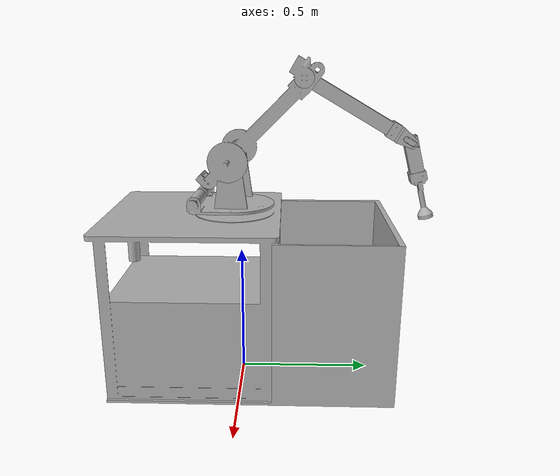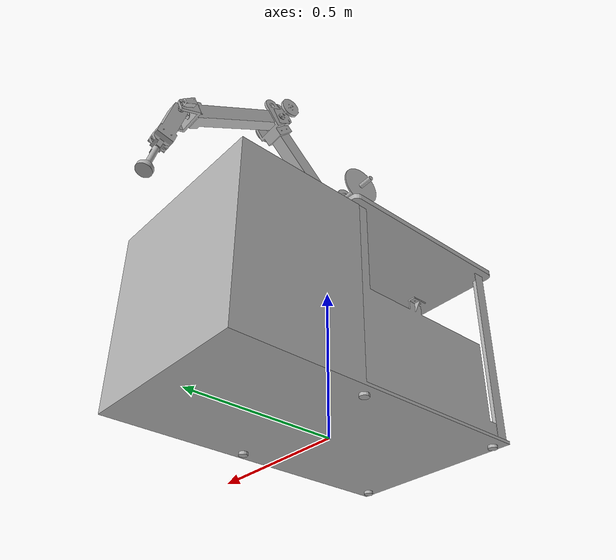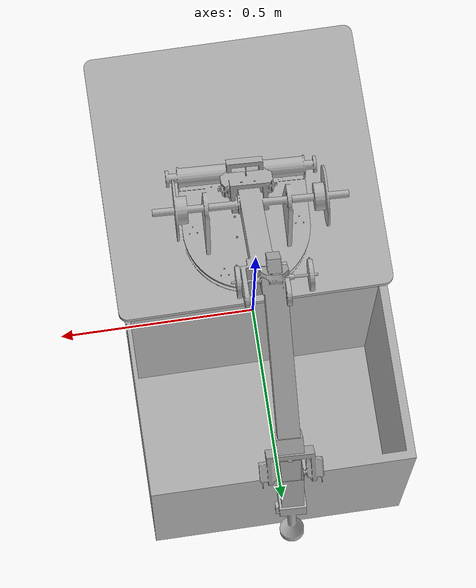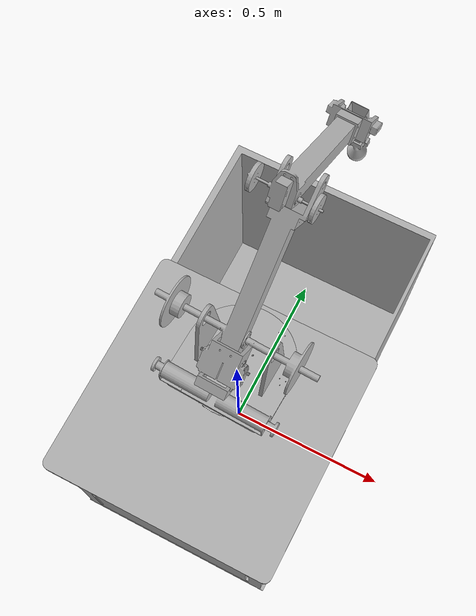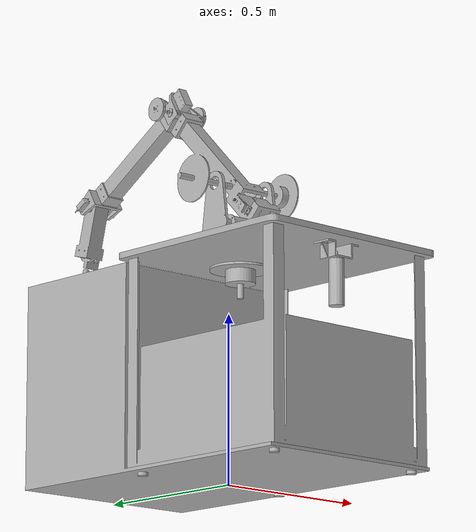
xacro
<?xml version="1.0" ?>
<robot name="vinci" xmlns:xacro="http://www.ros.org/wiki/xacro">

<xacro:include filename="$(find vinci_description)/urdf/materials.xacro" />
<xacro:include filename="$(find vinci_description)/urdf/vinci.trans" />
<xacro:include filename="$(find vinci_description)/urdf/vinci.gazebo" />

<link name="dummy">
   </link>
<joint name="dummy_joint" type="fixed">
     <parent link="dummy"/>
     <child link="base_link"/>
</joint>

<link name="base_link">
  <inertial>
    <origin xyz="-0.021518218467853914 0.23351950797477217 0.23670607205875357" rpy="0 0 0"/>
    <mass value="17.97264000000002"/>
    <inertia ixx="1.833137" iyy="1.542102" izz="1.955592" ixy="0.030245" iyz="-0.287683" ixz="0.030749"/>
  </inertial>
  <visual>
    <origin xyz="0 0 0" rpy="0 0 0"/>
    <geometry>
      <mesh filename="package://vinci_description/meshes/base_link.stl" scale="0.001 0.001 0.001"/>
    </geometry>
    <material name="silver"/>
  </visual>
  <collision>
    <origin xyz="0 0 0" rpy="0 0 0"/>
    <geometry>
      <mesh filename="package://vinci_description/meshes/base_link.stl" scale="0.001 0.001 0.001"/>
    </geometry>
  </collision>
</link>

<link name="foundation__base_1">
  <inertial>
    <origin xyz="-0.001888232824595331 0.0011432017738466638 0.20943681365096398" rpy="0 0 0"/>
    <mass value="920.4727092380526"/>
    <inertia ixx="48.985183" iyy="41.31025" izz="48.576431" ixy="0.000622" iyz="0.048602" ixz="-0.042143"/>
  </inertial>
  <visual>
    <origin xyz="-0.0033 0.218673 -0.005643" rpy="0 0 0"/>
    <geometry>
      <mesh filename="package://vinci_description/meshes/foundation__base_1.stl" scale="0.001 0.001 0.001"/>
    </geometry>
    <material name="silver"/>
  </visual>
  <collision>
    <origin xyz="-0.0033 0.218673 -0.005643" rpy="0 0 0"/>
    <geometry>
      <mesh filename="package://vinci_description/meshes/foundation__base_1.stl" scale="0.001 0.001 0.001"/>
    </geometry>
  </collision>
</link>

<link name="foundation_fork_1">
  <inertial>
    <origin xyz="-0.0014671964926098236 -0.03376372718940687 0.027101208060099302" rpy="0 0 0"/>
    <mass value="2.098305031192791"/>
    <inertia ixx="0.018488" iyy="0.020902" izz="0.024893" ixy="8.8e-05" iyz="0.001405" ixz="5.5e-05"/>
  </inertial>
  <visual>
    <origin xyz="-0.0033 0.068673 -0.646643" rpy="0 0 0"/>
    <geometry>
      <mesh filename="package://vinci_description/meshes/foundation_fork_1.stl" scale="0.001 0.001 0.001"/>
    </geometry>
    <material name="silver"/>
  </visual>
  <collision>
    <origin xyz="-0.0033 0.068673 -0.646643" rpy="0 0 0"/>
    <geometry>
      <mesh filename="package://vinci_description/meshes/foundation_fork_1.stl" scale="0.001 0.001 0.001"/>
    </geometry>
  </collision>
</link>

<link name="forearm_1">
  <inertial>
    <origin xyz="-0.09540847267472075 0.04056293998704136 0.03597247258900238" rpy="0 0 0"/>
    <mass value="1.1580779637924898"/>
    <inertia ixx="0.036195" iyy="0.028689" izz="0.028609" ixy="-0.00031" iyz="-0.017574" ixz="-0.000725"/>
  </inertial>
  <visual>
    <origin xyz="-0.093223 0.072385 -0.851643" rpy="0 0 0"/>
    <geometry>
      <mesh filename="package://vinci_description/meshes/forearm_1.stl" scale="0.001 0.001 0.001"/>
    </geometry>
    <material name="silver"/>
  </visual>
  <collision>
    <origin xyz="-0.093223 0.072385 -0.851643" rpy="0 0 0"/>
    <geometry>
      <mesh filename="package://vinci_description/meshes/forearm_1.stl" scale="0.001 0.001 0.001"/>
    </geometry>
  </collision>
</link>

<link name="hand_1">
  <inertial>
    <origin xyz="-0.03992368478493042 0.07143853540526318 -0.033703682433203985" rpy="0 0 0"/>
    <mass value="0.39288844288416375"/>
    <inertia ixx="0.008986" iyy="0.003142" izz="0.007028" ixy="-0.000242" iyz="0.003845" ixz="0.000159"/>
  </inertial>
  <visual>
    <origin xyz="-0.048664 -0.23023 -1.152164" rpy="0 0 0"/>
    <geometry>
      <mesh filename="package://vinci_description/meshes/hand_1.stl" scale="0.001 0.001 0.001"/>
    </geometry>
    <material name="silver"/>
  </visual>
  <collision>
    <origin xyz="-0.048664 -0.23023 -1.152164" rpy="0 0 0"/>
    <geometry>
      <mesh filename="package://vinci_description/meshes/hand_1.stl" scale="0.001 0.001 0.001"/>
    </geometry>
  </collision>
</link>

<link name="hand_fork_1">
  <inertial>
    <origin xyz="0.001044527118925321 0.025305490978953737 -0.014623183252032379" rpy="0 0 0"/>
    <mass value="0.19515039122298017"/>
    <inertia ixx="0.000118" iyy="0.00042" izz="0.000445" ixy="1.3e-05" iyz="2.1e-05" ixz="1e-06"/>
  </inertial>
  <visual>
    <origin xyz="-0.019793 -0.56946 -0.957164" rpy="0 0 0"/>
    <geometry>
      <mesh filename="package://vinci_description/meshes/hand_fork_1.stl" scale="0.001 0.001 0.001"/>
    </geometry>
    <material name="silver"/>
  </visual>
  <collision>
    <origin xyz="-0.019793 -0.56946 -0.957164" rpy="0 0 0"/>
    <geometry>
      <mesh filename="package://vinci_description/meshes/hand_fork_1.stl" scale="0.001 0.001 0.001"/>
    </geometry>
  </collision>
</link>

<link name="end_effector_1">
  <inertial>
    <origin xyz="-0.021214291377516858 0.048734773258859776 -0.17836473257148278" rpy="0 0 0"/>
    <mass value="0.5354810781353959"/>
    <inertia ixx="0.003599" iyy="0.003392" izz="0.000502" ixy="-2e-06" iyz="0.000835" ixz="9e-06"/>
  </inertial>
  <visual>
    <origin xyz="-0.046732 -0.615914 -0.92968" rpy="0 0 0"/>
    <geometry>
      <mesh filename="package://vinci_description/meshes/end_effector_1.stl" scale="0.001 0.001 0.001"/>
    </geometry>
    <material name="silver"/>
  </visual>
  <collision>
    <origin xyz="-0.046732 -0.615914 -0.92968" rpy="0 0 0"/>
    <geometry>
      <mesh filename="package://vinci_description/meshes/end_effector_1.stl" scale="0.001 0.001 0.001"/>
    </geometry>
  </collision>
</link>

<joint name="foundation_base" type="fixed">
  <origin xyz="0.0033 -0.218673 0.005643" rpy="0 0 0"/>
  <parent link="base_link"/>
  <child link="foundation__base_1"/>
</joint>

<joint name="foundation_fork" type="continuous">
  <origin xyz="0.0 0.15 0.641" rpy="0 0 0"/>
  <parent link="foundation__base_1"/>
  <child link="foundation_fork_1"/>
  <axis xyz="-0.0 -0.0 1.0"/>
</joint>

<joint name="fork_forearm" type="revolute">
  <origin xyz="0.089923 -0.003712 0.205" rpy="0 0 0"/>
  <parent link="foundation_fork_1"/>
  <child link="forearm_1"/>
  <axis xyz="-0.999149 0.041238 -0.0"/>
  <limit upper="1.396263" lower="-0.174533" effort="100" velocity="100"/>
</joint>

<joint name="forearm_hand" type="revolute">
  <origin xyz="-0.044559 0.302615 0.300521" rpy="0 0 0"/>
  <parent link="forearm_1"/>
  <child link="hand_1"/>
  <axis xyz="-0.999149 0.041238 -0.0"/>
  <limit upper="0.698132" lower="-0.698132" effort="100" velocity="100"/>
</joint>

<joint name="hand_fork" type="revolute">
  <origin xyz="-0.028871 0.33923 -0.195" rpy="0 0 0"/>
  <parent link="hand_1"/>
  <child link="hand_fork_1"/>
  <axis xyz="-0.035713 -0.865289 0.5"/>
  <limit upper="1.570796" lower="-1.570796" effort="100" velocity="100"/>
</joint>

<joint name="fork_end" type="revolute">
  <origin xyz="0.026939 0.046454 -0.027484" rpy="0 0 0"/>
  <parent link="hand_fork_1"/>
  <child link="end_effector_1"/>
  <axis xyz="-0.999116 0.042013 0.001343"/>
  <limit upper="1.570796" lower="-1.570796" effort="100" velocity="100"/>
</joint>

<gazebo>
    <plugin filename="libgazebo_ros_control.so" name="gazebo_ros_control">
    </plugin>
</gazebo>

</robot>

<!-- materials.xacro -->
<robot name="vinci" xmlns:xacro="http://www.ros.org/wiki/xacro" >

<material name="silver">
  <color rgba="0.700 0.700 0.700 1.000"/>
</material>

</robot>

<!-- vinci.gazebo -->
<robot name="vinci" xmlns:xacro="http://www.ros.org/wiki/xacro" >

<xacro:property name="body_color" value="Gazebo/Silver" />

<gazebo reference="base_link">
  <material>${body_color}</material>
  <mu1>0.2</mu1>
  <mu2>0.2</mu2>
  <selfCollide>true</selfCollide>
  <gravity>true</gravity>
</gazebo>

<gazebo reference="foundation__base_1">
  <material>${body_color}</material>
  <mu1>0.2</mu1>
  <mu2>0.2</mu2>
  <selfCollide>true</selfCollide>
</gazebo>

<gazebo reference="foundation_fork_1">
  <material>${body_color}</material>
  <mu1>0.2</mu1>
  <mu2>0.2</mu2>
  <selfCollide>true</selfCollide>
</gazebo>

<gazebo reference="forearm_1">
  <material>${body_color}</material>
  <mu1>0.2</mu1>
  <mu2>0.2</mu2>
  <selfCollide>true</selfCollide>
</gazebo>

<gazebo reference="hand_1">
  <material>${body_color}</material>
  <mu1>0.2</mu1>
  <mu2>0.2</mu2>
  <selfCollide>true</selfCollide>
</gazebo>

<gazebo reference="hand_fork_1">
  <material>${body_color}</material>
  <mu1>0.2</mu1>
  <mu2>0.2</mu2>
  <selfCollide>true</selfCollide>
</gazebo>

<gazebo reference="end_effector_1">
  <material>${body_color}</material>
  <mu1>0.2</mu1>
  <mu2>0.2</mu2>
  <selfCollide>true</selfCollide>
</gazebo>

</robot>
